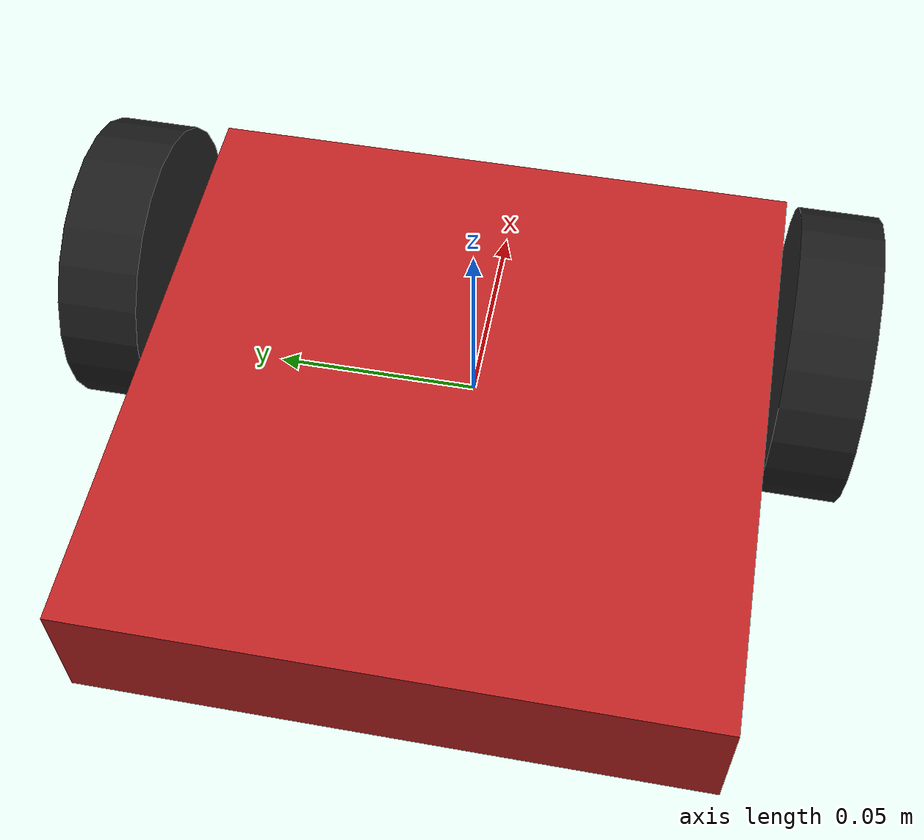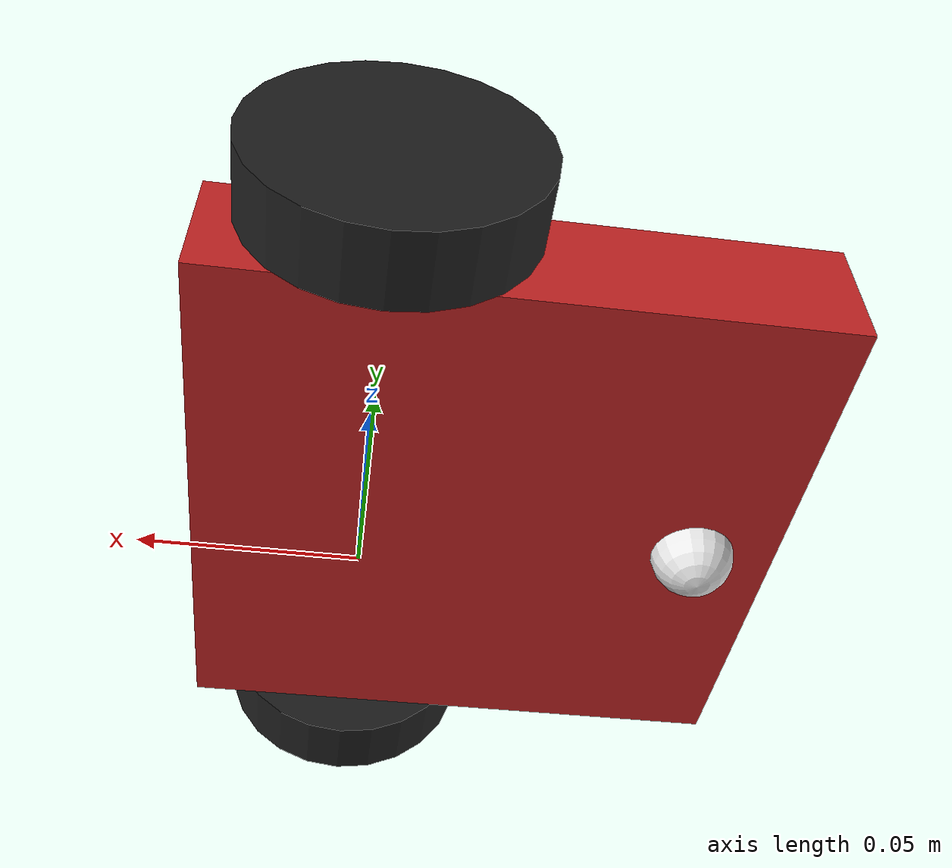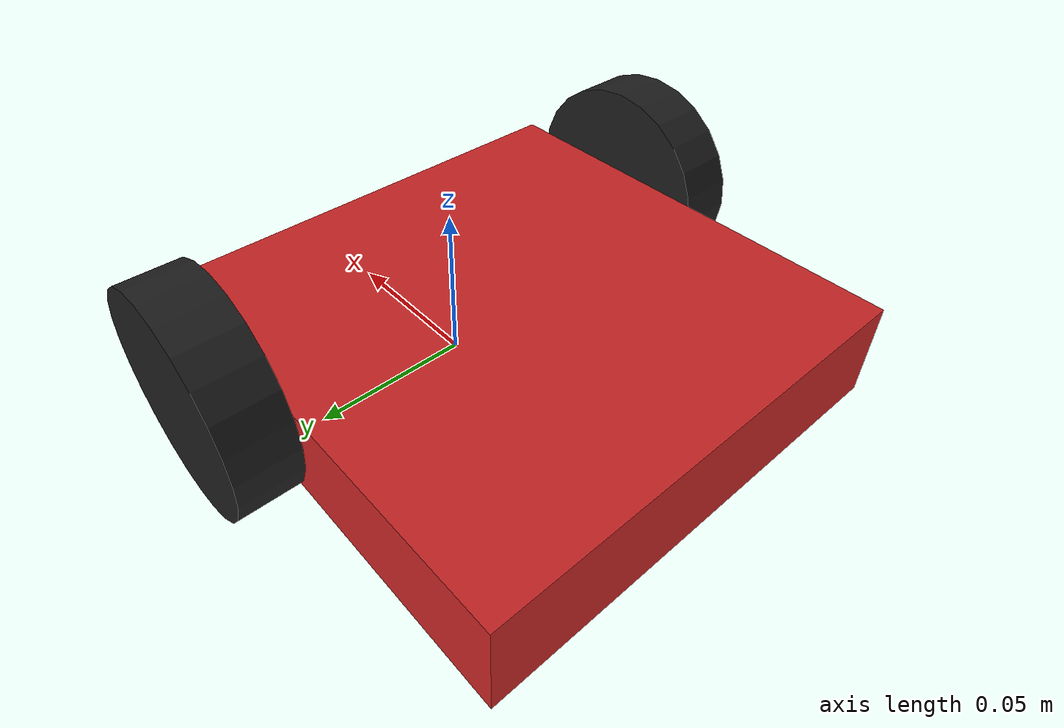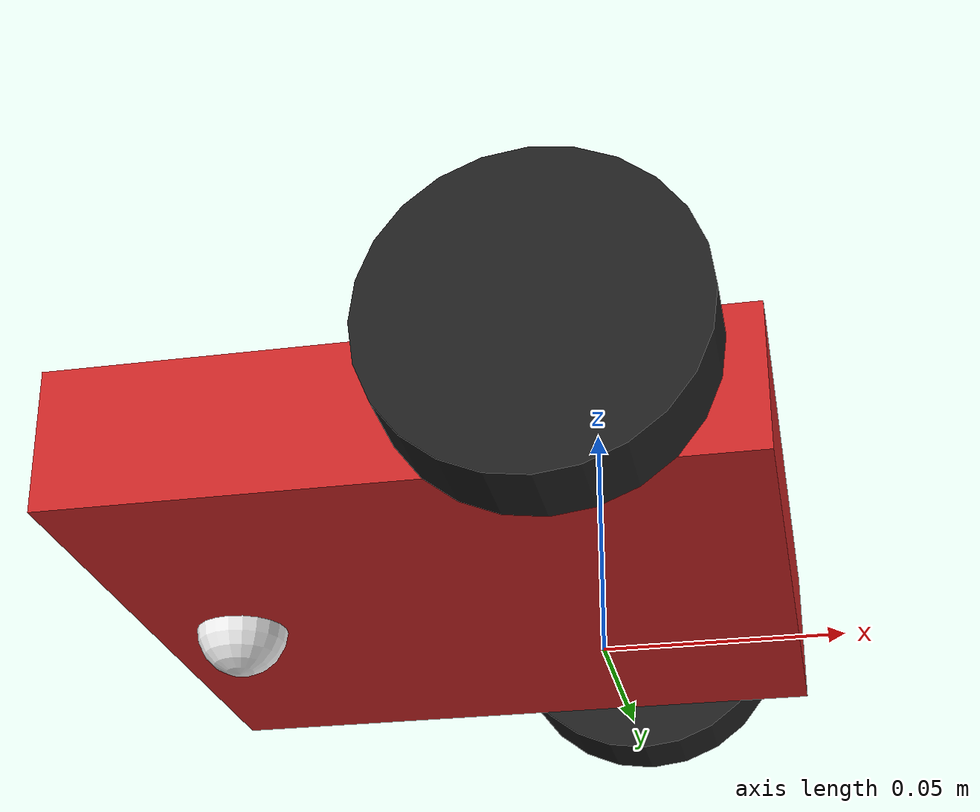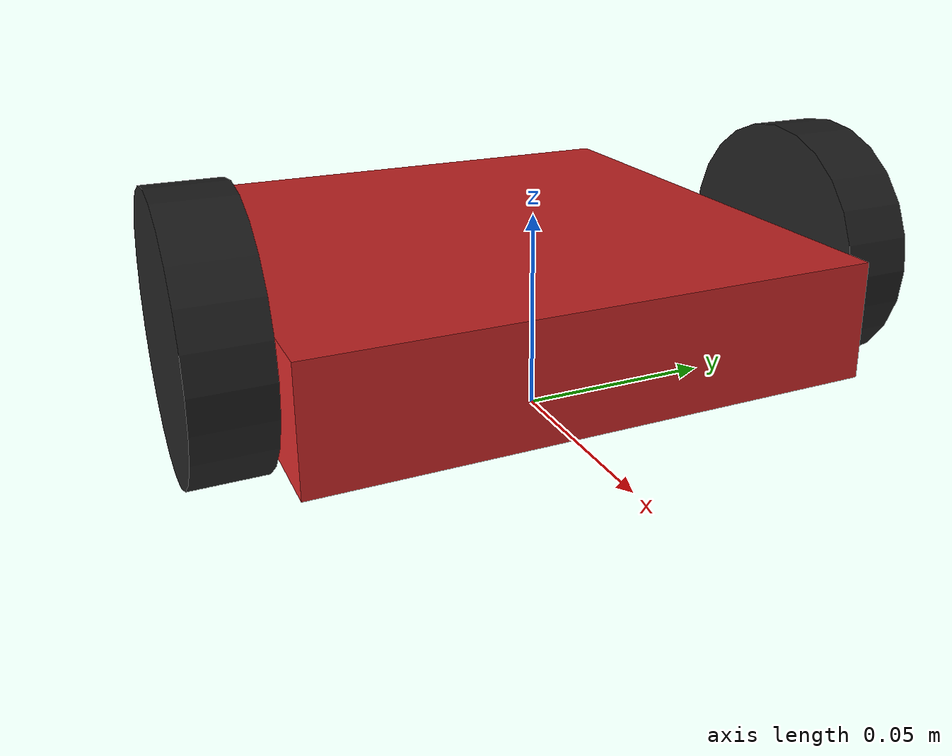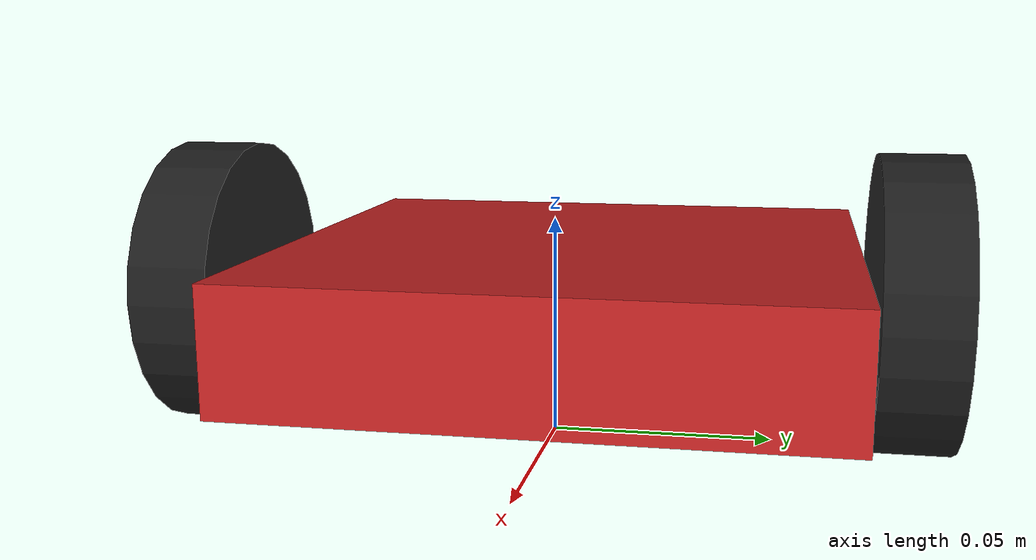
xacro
<?xml version="1.0"?>
<robot name="diff_robot" xmlns:xacro="http://ros.org/wiki/xacro">
  <xacro:include filename="$(find my_ugv_description)/urdf/simple_diff_robot_gazebo.xacro"/>

  <link name="base_footprint"/>

  <joint name="base_joint" type="fixed">
    <parent link="base_footprint"/>
    <child link="base_link"/>
    <origin xyz="0 0 0.01" rpy="0 0 0"/>
  </joint>

  <link name="base_link"> <!-- Important: Every visual, collision and inertial tag has its own origin -->
    <visual>
      <origin xyz="-0.03 0 0.015" rpy="0 0 0"/>
      <geometry>
        <box size="0.14 0.14 0.03" />
      </geometry>
    </visual>

    <collision>
      <origin xyz="-0.03 0 0.015" rpy="0 0 0"/>
      <geometry>
        <box size="0.140 0.140 0.03"/>
      </geometry>
    </collision>

    <inertial>
      <origin xyz="0 0 0.015" rpy="0 0 0"/> <!-- Since a plugin is used, an offset along its X axis can affect the robot behavior -->
      <mass value="8.25e-01"/>
      <inertia ixx="1.4e-03" ixy="0" ixz="0"
               iyy="1.4e-03" iyz="0"
               izz="2.695e-03" />
    </inertial>
  </link>

  <!-- Wheels definition (joints and links) -->
  <joint name="wheel_left_joint" type="continuous">
    <parent link="base_link"/>
    <child link="wheel_left_link"/>
    <origin xyz="0 0.08 0.023" rpy="-1.57 0 0"/>
    <axis xyz="0 0 1"/>
  </joint>

  <link name="wheel_left_link">
    <visual>
      <origin xyz="0 0 0" rpy="0 0 0"/>
      <geometry>
        <cylinder length="0.018" radius="0.033"/>
      </geometry>
    </visual>

    <collision>
      <origin xyz="0 0 0" rpy="0 0 0"/>
      <geometry>
        <cylinder length="0.018" radius="0.033"/>
      </geometry>
    </collision>

    <inertial>
      <origin xyz="0 0 0" />
      <mass value="3e-02" />
      <inertia ixx="9e-06" ixy="0" ixz="0"
               iyy="9e-06" iyz="0"
               izz="1.6e-05" />
      </inertial>
  </link>

  <joint name="wheel_right_joint" type="continuous">
    <parent link="base_link"/>
    <child link="wheel_right_link"/>
    <origin xyz="0 -0.08 0.023" rpy="-1.57 0 0"/>
    <axis xyz="0 0 1"/>
  </joint>

  <link name="wheel_right_link">
    <visual>
      <origin xyz="0 0 0" rpy="0 0 0"/>
      <geometry>
        <cylinder length="0.018" radius="0.033"/>
      </geometry>
    </visual>

    <collision>
      <origin xyz="0 0 0" rpy="0 0 0"/>
      <geometry>
        <cylinder length="0.018" radius="0.033"/>
      </geometry>
    </collision>

    <inertial>
      <origin xyz="0 0 0" />
      <mass value="3e-02" />
      <inertia ixx="9e-06" ixy="0" ixz="0"
               iyy="9e-06" iyz="0"
               izz="1.6e-05" />
      </inertial>
  </link>

  <!-- Caster wheel definition (joint and link) -->
  <joint name="caster_joint" type="fixed">
    <parent link="base_link"/>
    <child link="caster_link"/>
    <origin xyz="-0.08 0 0" rpy="0 0 0"/>
  </joint>

  <link name="caster_link">
    <visual>
      <origin xyz="0 0 0" rpy="0 0 0"/>
      <geometry>
        <sphere radius="0.01"/>
      </geometry>
    </visual>

    <collision>
      <origin xyz="0 0 0" rpy="0 0 0"/>
      <geometry>
        <sphere radius="0.01"/>
      </geometry>
    </collision>
    <!-- Since the caster wheel is only a point of contact, inertial tag can be ommited -->
  </link>

</robot>
